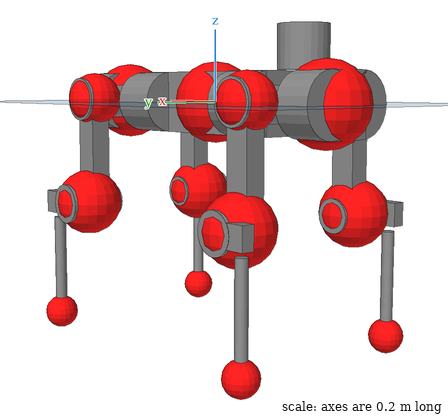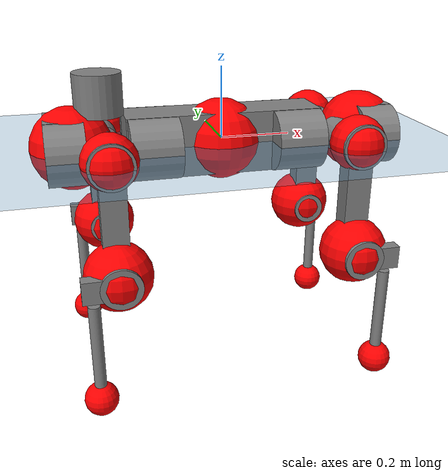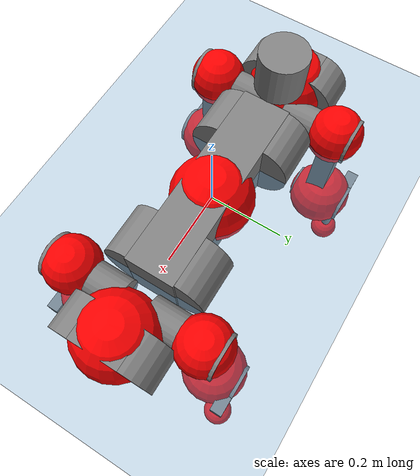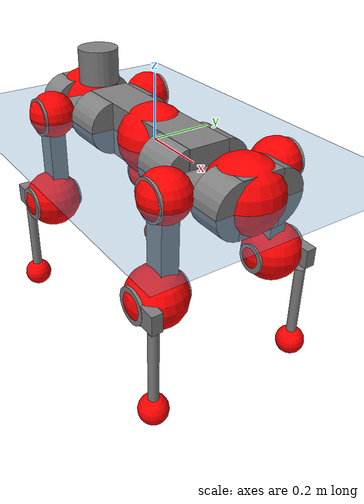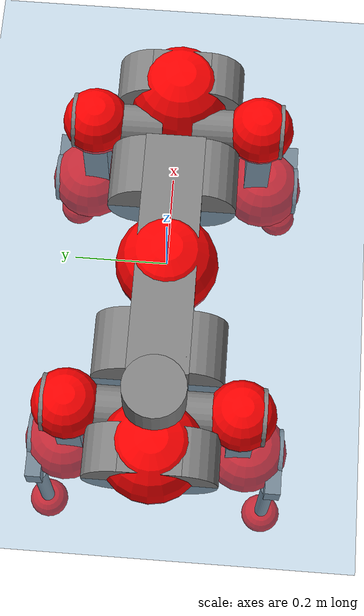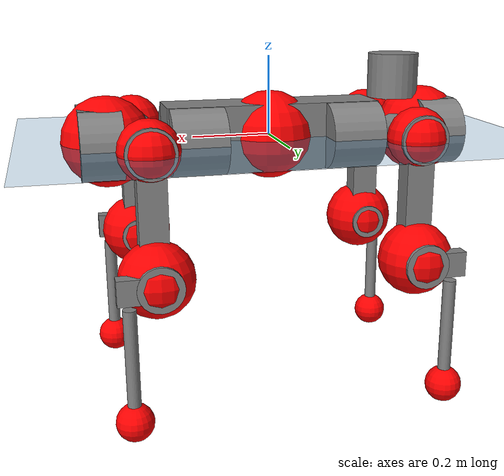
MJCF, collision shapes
<mujoco model="anymal_c">
  <compiler angle="radian" assetdir="assets" balanceinertia="true" inertiafromgeom="false"/>

  <option timestep="0.005" density="1.2" viscosity="2e-05"/>

  <size nkey="1"/>

  <visual>
    <quality shadowsize="8192"/>
    <map shadowclip="0.5"/>
  </visual>

  <default>
    <default class="/">
      <material specular="0" shininess="0.25"/>
      <geom contype="0" conaffinity="0" group="1" solref="-1000 -80"/>
      <site size="0.01 0.005 0.005" group="5"/>
      <general forcelimited="true" forcerange="-80 80" biastype="affine" gainprm="80" biasprm="0 -80 -2"/>
      <default class="anymal_c">
        <joint armature="0.01" damping="0.01" frictionloss="0.1"/>
        <default class="visual">
          <geom type="mesh" group="2"/>
          <default class="visual_zflip"/>
        </default>
        <default class="collision">
          <geom type="cylinder" group="3"/>
          <default class="foot">
            <geom size="0.03 0 0" type="sphere" condim="6" priority="1" friction="0.8 0.02 0.01" solimp="0.015 1 0.03"/>
          </default>
        </default>
      </default>
      <default class="reward_collision_sphere">
        <geom group="5" rgba="1 0 0 1"/>
      </default>
    </default>
  </default>

  <asset>
    <texture type="skybox" colorspace="auto" name="//unnamed_texture_0" builtin="gradient" rgb1="0.95 0.95 0.95" rgb2="0.95 0.95 0.95" width="100" height="600"/>
    <texture type="2d" colorspace="auto" name="texplane" builtin="checker" rgb1="0.345 0.575 0.748" rgb2="0.345 0.575 0.748" markrgb="1 1 1" width="512" height="512"/>
    <texture type="2d" colorspace="linear" name="base" file="base.png"/>
    <texture type="2d" colorspace="linear" name="top_shell" file="top_shell.png"/>
    <texture type="2d" colorspace="linear" name="bottom_shell" file="bottom_shell.png"/>
    <texture type="2d" colorspace="linear" name="remote" file="remote.png"/>
    <texture type="2d" colorspace="linear" name="hatch" file="hatch.png"/>
    <texture type="2d" colorspace="linear" name="handle" file="handle.png"/>
    <texture type="2d" colorspace="linear" name="face" file="face.png"/>
    <texture type="2d" colorspace="linear" name="battery" file="battery.png"/>
    <texture type="2d" colorspace="linear" name="lidar_cage" file="lidar_cage.png"/>
    <texture type="2d" colorspace="linear" name="depth_camera" file="depth_camera.png"/>
    <texture type="2d" colorspace="linear" name="wide_angle_camera" file="wide_angle_camera.png"/>
    <texture type="2d" colorspace="linear" name="lidar" file="lidar.png"/>
    <texture type="2d" colorspace="linear" name="drive" file="drive.png"/>
    <texture type="2d" colorspace="linear" name="hip_l" file="hip_l.png"/>
    <texture type="2d" colorspace="linear" name="shank_l" file="shank_l.png"/>
    <texture type="2d" colorspace="linear" name="foot" file="foot.png"/>
    <texture type="2d" colorspace="linear" name="thigh" file="thigh.png"/>
    <texture type="2d" colorspace="linear" name="shank_r" file="shank_r.png"/>
    <texture type="2d" colorspace="linear" name="hip_r" file="hip_r.png"/>
    <material name="MatPlane" class="/" texture="texplane" texuniform="true" texrepeat="2 2" specular="0.9" shininess="0.5"/>
    <material name="black_plastic" class="/" rgba="0.007 0.007 0.007 1"/>
    <material name="green" class="/" rgba="0.052 0.178 0.033 1"/>
    <material name="red" class="/" rgba="0.178 0.006 0.005 1"/>
    <material name="yellow" class="/" rgba="0.178 0.119 0.006 1"/>
    <material name="lwl" class="/" rgba="0.8 0.8 0.8 1"/>
    <material name="base" class="/" texture="base"/>
    <material name="top_shell" class="/" texture="top_shell"/>
    <material name="bottom_shell" class="/" texture="bottom_shell"/>
    <material name="hip_l" class="/" texture="hip_l"/>
    <material name="thigh" class="/" texture="thigh"/>
    <material name="shank_l" class="/" texture="shank_l"/>
    <material name="foot" class="/" texture="foot"/>
    <material name="hip_r" class="/" texture="hip_r"/>
    <material name="shank" class="/" texture="shank_r"/>
    <material name="hatch" class="/" texture="hatch"/>
    <material name="remote" class="/" texture="remote"/>
    <material name="handle" class="/" texture="handle"/>
    <material name="face" class="/" texture="face"/>
    <material name="depth_camera" class="/" texture="depth_camera"/>
    <material name="wide_angle_camera" class="/" texture="wide_angle_camera"/>
    <material name="battery" class="/" texture="battery"/>
    <material name="lidar_cage" class="/" texture="lidar_cage"/>
    <material name="lidar" class="/" texture="lidar"/>
    <material name="drive" class="/" texture="drive"/>
    <mesh name="base_0" class="/" file="base_0.obj"/>
    <mesh name="base_1" class="/" file="base_1.obj"/>
    <mesh name="base_2" class="/" file="base_2.obj"/>
    <mesh name="base_3" class="/" file="base_3.obj"/>
    <mesh name="base_4" class="/" file="base_4.obj"/>
    <mesh name="base_5" class="/" file="base_5.obj"/>
    <mesh name="top_shell" class="/" file="top_shell.obj"/>
    <mesh name="bottom_shell" class="/" file="bottom_shell.obj"/>
    <mesh name="remote" class="/" file="remote.obj"/>
    <mesh name="handle" class="/" file="handle.obj"/>
    <mesh name="face" class="/" file="face.obj"/>
    <mesh name="wide_angle_camera" class="/" file="wide_angle_camera.obj"/>
    <mesh name="depth_camera" class="/" file="depth_camera.obj"/>
    <mesh name="battery" class="/" file="battery.obj"/>
    <mesh name="lidar_cage" class="/" file="lidar_cage.obj"/>
    <mesh name="lidar" class="/" file="lidar.obj"/>
    <mesh name="drive" class="/" file="drive.obj"/>
    <mesh name="hip_l" class="/" file="hip_l.obj"/>
    <mesh name="thigh" class="/" file="thigh.obj"/>
    <mesh name="shank_l" class="/" file="shank_l.obj"/>
    <mesh name="foot" class="/" file="foot.obj"/>
    <mesh name="hip_r" class="/" file="hip_r.obj"/>
    <mesh name="hatch" class="/" file="hatch.obj"/>
    <mesh name="shank_r" class="/" file="shank_r.obj"/>
  </asset>

  <worldbody>
    <geom name="floor" class="/" size="100 100 0.125" type="plane" group="0" material="MatPlane"/>
    <light name="toplight_shadow" class="/" pos="0 0 5" dir="0.0990148 0.0990148 -0.990148" type="directional" ambient="0.04 0.04 0.04" diffuse="0.55 0.55 0.55" specular="0.12 0.12 0.12"/>
    <light name="toplight_fill" class="/" pos="0 0 5" dir="0.0990148 0.0990148 -0.990148" type="directional" castshadow="false" ambient="0.04 0.04 0.04" diffuse="0.3 0.3 0.3" specular="0.08 0.08 0.08"/>
    <body name="trunk" childclass="anymal_c" pos="-0.00176556 -0.000528869 -0.00036757" quat="1 0.000228988 0.000369212 0.000461114">
      <inertial pos="0.00149888 0.000395664 0.0532701" quat="0.490098 0.504945 0.502763 0.50206" mass="15.9601" diaginertia="0.446633 0.250908 0.314884"/>
      <joint name="//unnamed_joint_0" type="free" armature="0" damping="0" frictionloss="0"/>
      <geom name="//unnamed_geom_1" class="visual" material="green" mesh="base_0"/>
      <geom name="//unnamed_geom_2" class="visual" material="yellow" mesh="base_1"/>
      <geom name="//unnamed_geom_3" class="visual" material="red" mesh="base_2"/>
      <geom name="//unnamed_geom_4" class="visual" material="black_plastic" mesh="base_3"/>
      <geom name="//unnamed_geom_5" class="visual" material="lwl" mesh="base_4"/>
      <geom name="//unnamed_geom_6" class="visual" material="base" mesh="base_5"/>
      <geom name="trunk_1" class="collision" size="0.273852 0.0661023 0.0849887" type="box"/>
      <geom name="trunk_2" class="collision" size="0.0849887 0.0684631" pos="0.201535 0.058358 0" quat="0.707107 0 0.707107 0"/>
      <geom name="trunk_3" class="collision" size="0.0849887 0.0684631" pos="-0.201535 0.058358 0" quat="0.707107 0 0.707107 0"/>
      <geom name="trunk_4" class="collision" size="0.0849887 0.0684631" pos="0.201535 -0.058358 0" quat="0.707107 0 0.707107 0"/>
      <geom name="trunk_5" class="collision" size="0.0849887 0.0684631" pos="-0.201535 -0.058358 0" quat="0.707107 0 0.707107 0"/>
      <geom name="//unnamed_geom_12" class="visual" material="top_shell" mesh="top_shell"/>
      <geom name="//unnamed_geom_13" class="visual" material="bottom_shell" mesh="bottom_shell"/>
      <geom name="//unnamed_geom_14" class="visual" material="remote" mesh="remote"/>
      <geom name="//unnamed_geom_15" class="visual" material="handle" mesh="handle"/>
      <geom name="//unnamed_geom_16" class="visual" pos="0.384074 0 0" quat="1 0 0 0" material="face" mesh="face"/>
      <geom name="trunk_6" class="collision" size="0.0519375 0.0661023 0.0849887" pos="0.435037 0 0" type="box"/>
      <geom name="//unnamed_geom_18" class="collision" size="0.0849887 0.0519375" pos="0.435037 0.058358 0" quat="0.707107 0 0.707107 0"/>
      <geom name="//unnamed_geom_19" class="collision" size="0.0849887 0.0519375" pos="0.435037 -0.058358 0" quat="0.707107 0 0.707107 0"/>
      <geom name="//unnamed_geom_20" class="visual" pos="0.42777 0 -0.0324322" quat="0.965926 0 0.258819 0" material="depth_camera" mesh="depth_camera"/>
      <geom name="//unnamed_geom_21" class="visual" pos="0.475344 0 0.0160579" material="wide_angle_camera" mesh="wide_angle_camera"/>
      <geom name="//unnamed_geom_22" class="visual_zflip" pos="-0.384074 0 0" quat="0 0 0 1" material="face" mesh="face"/>
      <geom name="trunk_7" class="collision" size="0.0519375 0.0661023 0.0849887" pos="-0.435037 0 0" quat="0 0 0 1" type="box"/>
      <geom name="//unnamed_geom_24" class="collision" size="0.0849887 0.0519375" pos="-0.435037 -0.058358 0" quat="0 -0.707107 0 0.707107"/>
      <geom name="//unnamed_geom_25" class="collision" size="0.0849887 0.0519375" pos="-0.435037 0.058358 0" quat="0 -0.707107 0 0.707107"/>
      <geom name="//unnamed_geom_26" class="visual" pos="-0.42777 0 -0.0324322" quat="0 -0.258819 0 0.965926" material="depth_camera" mesh="depth_camera"/>
      <geom name="//unnamed_geom_27" class="visual_zflip" pos="-0.475344 0 0.0160579" quat="0 0 0 1" material="wide_angle_camera" mesh="wide_angle_camera"/>
      <geom name="//unnamed_geom_28" class="visual" material="battery" mesh="battery"/>
      <geom name="//unnamed_geom_29" class="visual" pos="0 0.0625305 0.030051" quat="0.683013 -0.183013 0.183013 0.683013" material="depth_camera" mesh="depth_camera"/>
      <geom name="//unnamed_geom_30" class="visual" pos="0 -0.0625305 0.030051" quat="0.683013 0.183013 0.183013 -0.683013" material="depth_camera" mesh="depth_camera"/>
      <geom name="//unnamed_geom_31" class="visual" pos="-0.337281 0 0.0788415" quat="1 0 0 0" material="lidar_cage" mesh="lidar_cage"/>
      <geom name="trunk_8" class="collision" size="0.0661023 0.0566591" pos="-0.337281 0 0.143202"/>
      <geom name="//unnamed_geom_33" class="visual" pos="-0.337281 -3.65022e-05 0.152534" quat="0.707107 0 0 -0.707107" material="lidar" mesh="lidar"/>
      <geom name="//unnamed_geom_34" class="visual" pos="0.277886 0.0867882 -4.12256e-09" quat="0.258819 0.965926 0 0" material="drive" mesh="drive"/>
      <geom name="//unnamed_geom_35" class="visual" pos="0.277886 -0.0867882 4.12256e-09" quat="0.258819 -0.965926 0 0" material="drive" mesh="drive"/>
      <geom name="//unnamed_geom_36" class="visual" pos="-0.277886 0.0867882 4.12256e-09" quat="0 0 0.965926 -0.258819" material="drive" mesh="drive"/>
      <geom name="//unnamed_geom_37" class="visual" pos="-0.277886 -0.0867882 -4.12256e-09" quat="0 0 -0.965926 -0.258819" material="drive" mesh="drive"/>
      <geom name="//unnamed_geom_38" class="visual" pos="0.107485 0 0.0783051" quat="1 0 0 0" material="hatch" mesh="hatch"/>
      <geom name="//unnamed_geom_39" class="reward_collision_sphere" size="0.113318"/>
      <geom name="//unnamed_geom_40" class="reward_collision_sphere" size="0.113318" pos="0.416969 0 0"/>
      <geom name="//unnamed_geom_41" class="reward_collision_sphere" size="0.113318" pos="-0.416969 0 0"/>
      <site name="imu" pos="0.234167 -0.00609761 0.0529411" size="0.00944319"/>
      <camera name="track" pos="0 -1.66737 0" quat="0.707107 0.707107 0 0" mode="trackcom"/>
      <camera name="ego_camera" pos="0.416969 0 -0.0429069" quat="-0.5 -0.5 0.5 0.5"/>
      <body name="LF_HIP" pos="0.278636 0.0877298 -0.00105355" quat="0.2577 0.966224 -5.23008e-05 -0.000877494">
        <inertial pos="0.052157 -0.0120841 -0.00772965" quat="-0.121819 0.710013 -0.142239 0.67883" mass="2.41733" diaginertia="0.00413688 0.00203905 0.00485497"/>
        <joint name="LF_HAA" pos="0 0 0" axis="0.99997 -0.00714572 0.00289478" range="-0.666813 0.494836" armature="0.0104434" damping="0.0101675" frictionloss="0.0974746"/>
        <geom name="//unnamed_geom_42" class="visual" pos="0 -0.000242511 3.98323e-05" quat="0.258819 -0.965926 0 0" material="hip_l" mesh="hip_l"/>
        <geom name="//unnamed_geom_43" class="visual" pos="0.0555032 -0.0661155 -0.0399395" quat="0.183013 -0.683013 0.683013 0.183013" material="drive" mesh="drive"/>
        <geom name="//unnamed_geom_44" class="collision" size="0.0472159 0.0661023" pos="0.0555032 -0.00997072 -0.00740681" quat="-0.353553 -0.612372 0.612372 -0.353553"/>
        <body name="LF_THIGH" pos="0.0559863 -0.0609155 -0.0443988" quat="0.183012 -0.683151 0.682855 0.183084">
          <inertial pos="0.028304 -0.00255172 -0.2661" quat="0.992746 -0.0020368 -0.0841668 0.08583" mass="2.63061" diaginertia="0.020594 0.012018 0.00591313"/>
          <joint name="LF_HFE" pos="0 0 0" axis="0.999997 0.00189233 -0.00147345" range="-3.13833 3.19217" armature="0.00924885" damping="0" frictionloss="0.0946154"/>
          <geom name="//unnamed_geom_45" class="visual" pos="0.00184856 2.9129e-06 0" quat="0.707107 0 0 -0.707107" material="thigh" mesh="thigh"/>
          <geom name="//unnamed_geom_46" class="collision" size="0.0613807 0.0377727" pos="0.0370639 0 0" quat="0.5 0.5 -0.5 -0.5"/>
          <geom name="//unnamed_geom_47" class="collision" size="0.035412 0.0283296 0.133445" pos="0.0277979 0 -0.151584" quat="0.707107 0 0 -0.707107" type="box"/>
          <geom name="//unnamed_geom_48" class="visual" pos="0.0929377 0 -0.305712" quat="1 0 0 0" material="drive" mesh="drive"/>
          <geom name="//unnamed_geom_49" class="collision" size="0.0472159 0.0661023" pos="0.0280759 0 -0.305712" quat="0.707107 0 0.707107 0"/>
          <geom name="//unnamed_geom_50" class="reward_collision_sphere" size="0.0755455" pos="0.0231649 0 0"/>
          <body name="LF_SHANK" pos="0.0953836 0.0021366 -0.304039" quat="1 6.79176e-07 3.92038e-06 3.59645e-05">
            <inertial pos="0.00598506 -0.0517247 -0.085013" quat="0.992953 -0.115743 -0.00105518 -0.0254242" mass="0.513178" diaginertia="0.00710195 0.00377966 0.00159561"/>
            <joint name="LF_KFE" pos="0 0 0" axis="0.999999 0.00128347 0.000607903" range="-3.11151 3.08893" armature="0.00933015" damping="0.010046" frictionloss="0.0958505"/>
            <geom name="//unnamed_geom_51" class="visual" pos="0.000602776 0.00321403 0" quat="0.707107 0 0 -0.707107" material="shank_l" mesh="shank_l"/>
            <geom name="LF_kfe_act" class="collision" size="0.0566591 0.0188864" pos="0.0185319 0 0" quat="0.5 0.5 -0.5 -0.5"/>
            <geom name="//unnamed_geom_53" class="collision" size="0.0542974 0.0318708 0.0179421" pos="0.0185319 -0.0479361 0" quat="0.5 0.5 -0.5 -0.5" type="box"/>
            <geom name="//unnamed_geom_54" class="visual" pos="0.0120919 -0.0722869 -0.362531" quat="0.382683 0 0 -0.92388" material="foot" mesh="foot"/>
            <geom name="LF_calf" class="collision" size="0.0165256 0.133387" pos="0.0120921 -0.0733227 -0.181266" quat="0.707107 0 0 -0.707107"/>
            <geom name="LF_foot" class="foot" size="0.0269271" pos="0.0120921 -0.0733227 -0.338396" quat="0.707107 0 0 -0.707107"/>
            <geom name="//unnamed_geom_57" class="reward_collision_sphere" size="0.0944319" pos="-0.0463298 0 0"/>
            <geom name="//unnamed_geom_58" class="reward_collision_sphere" size="0.0472159" pos="0.0120921 -0.0733227 -0.338396"/>
            <site name="LF_foot" class="foot" pos="0.0120921 -0.0733227 -0.338396" quat="0.707107 0 0 -0.707107" size="0.00944319"/>
          </body>
        </body>
      </body>
      <body name="RF_HIP" pos="0.278972 -0.0868751 0.00285202" quat="0.2587 -0.965958 2.70485e-05 2.92356e-05">
        <inertial pos="0.0536589 0.011796 -0.00877398" quat="0.133624 0.684318 0.116252 0.707347" mass="2.42207" diaginertia="0.00411011 0.0020399 0.00477593"/>
        <joint name="RF_HAA" pos="0 0 0" axis="0.999998 0.000107144 0.00181665" range="-0.455925 0.731662" armature="0.00948195" damping="0.00806845" frictionloss="0.0906871"/>
        <geom name="//unnamed_geom_59" class="visual" pos="0 0.000242509 3.98322e-05" quat="0.258819 0.965926 0 0" material="hip_r" mesh="hip_r"/>
        <geom name="//unnamed_geom_60" class="visual" pos="0.0555032 0.0661155 -0.0399395" quat="0.183013 0.683013 0.683013 -0.183013" material="drive" mesh="drive"/>
        <geom name="//unnamed_geom_61" class="collision" size="0.0472159 0.0661023" pos="0.0555032 0.00997072 -0.00740681" quat="-0.353553 0.612372 0.612372 0.353553"/>
        <body name="RF_THIGH" pos="0.0560845 0.0616867 -0.0475472" quat="0.182995 0.683169 0.682787 -0.183289">
          <inertial pos="0.0284183 -4.8323e-05 -0.265986" quat="0.992818 0.00535281 -0.0747356 0.0932683" mass="2.64107" diaginertia="0.0212143 0.0124496 0.00614737"/>
          <joint name="RF_HFE" pos="0 0 0" axis="1 6.89686e-05 0.000597572" stiffness="0.00592588" range="-3.19596 3.18335" armature="0.00847741" damping="0.0101163" frictionloss="0.089526"/>
          <geom name="//unnamed_geom_62" class="visual" pos="0.00184856 2.9129e-06 0" quat="0.707107 0 0 -0.707107" material="thigh" mesh="thigh"/>
          <geom name="//unnamed_geom_63" class="collision" size="0.0613807 0.0377727" pos="0.0370639 0 0" quat="0.5 0.5 0.5 0.5"/>
          <geom name="//unnamed_geom_64" class="collision" size="0.035412 0.0283296 0.133445" pos="0.0277979 0 -0.151584" quat="0.707107 0 0 0.707107" type="box"/>
          <geom name="//unnamed_geom_65" class="visual" pos="0.0929377 0 -0.305712" quat="1 0 0 0" material="drive" mesh="drive"/>
          <geom name="//unnamed_geom_66" class="collision" size="0.0472159 0.0661023" pos="0.0280759 0 -0.305712" quat="0.707107 0 0.707107 0"/>
          <geom name="//unnamed_geom_67" class="reward_collision_sphere" size="0.0755455" pos="0.0231649 0 0"/>
          <body name="RF_SHANK" pos="0.0934209 0.00034398 -0.306522" quat="1 4.13055e-05 5.54999e-06 5.02022e-07">
            <inertial pos="0.00422818 0.0516519 -0.0838185" quat="0.992688 0.118389 -0.00129839 0.0235252" mass="0.467014" diaginertia="0.00669308 0.00371963 0.00148835"/>
            <joint name="RF_KFE" pos="0 0 0" axis="0.999998 -0.00195486 0.000176648" range="-3.12809 3.12508" armature="0.0103907" damping="0.00947328" frictionloss="0.0948261"/>
            <geom name="//unnamed_geom_68" class="visual" pos="0.000602773 -0.00321403 0" quat="0.707107 0 0 0.707107" material="shank" mesh="shank_r"/>
            <geom name="RF_kfe_act" class="collision" size="0.0566591 0.0188864" pos="0.0185319 0 0" quat="0.5 0.5 0.5 0.5"/>
            <geom name="//unnamed_geom_70" class="collision" size="0.0542974 0.0318708 0.0179421" pos="0.0185319 0.0479361 0" quat="0.5 0.5 0.5 0.5" type="box"/>
            <geom name="//unnamed_geom_71" class="visual" pos="0.0120922 0.0722869 -0.362531" quat="0.382683 0 0 0.92388" material="foot" mesh="foot"/>
            <geom name="RF_calf" class="collision" size="0.0165256 0.133387" pos="0.0120921 0.0733227 -0.181266" quat="0.707107 0 0 0.707107"/>
            <geom name="RF_foot" class="foot" size="0.0280985" pos="0.0120921 0.0733227 -0.338396" quat="0.707107 0 0 0.707107"/>
            <geom name="//unnamed_geom_74" class="reward_collision_sphere" size="0.0944319" pos="-0.0463298 0 0"/>
            <geom name="//unnamed_geom_75" class="reward_collision_sphere" size="0.0472159" pos="0.0120921 0.0733227 -0.338396"/>
            <site name="RF_foot" class="foot" pos="0.0120921 0.0733227 -0.338396" quat="0.707107 0 0 0.707107" size="0.00944319"/>
          </body>
        </body>
      </body>
      <body name="LH_HIP" pos="-0.276953 0.0871235 -0.00169764" quat="3.61817e-06 -1.80234e-05 0.965916 -0.258857">
        <inertial pos="0.0525265 0.0123605 -0.0115939" quat="0.137133 0.679372 0.127353 0.709527" mass="2.42655" diaginertia="0.00414056 0.0019509 0.0047057"/>
        <joint name="LH_HAA" pos="0 0 0" axis="1 -0.000351614 -0.000915041" range="-0.440147 0.775131" armature="0.00950697" damping="0.00343162" frictionloss="0.106767"/>
        <geom name="//unnamed_geom_76" class="visual" pos="0 0.000242509 3.98322e-05" quat="-0.258819 -0.965926 0 0" material="hip_r" mesh="hip_r"/>
        <geom name="//unnamed_geom_77" class="visual" pos="0.0555032 0.0661155 -0.0399395" quat="0.183013 0.683013 0.683013 -0.183013" material="drive" mesh="drive"/>
        <geom name="//unnamed_geom_78" class="collision" size="0.0472159 0.0661023" pos="0.0555032 0.00997072 -0.00740681" quat="-0.353553 0.612372 0.612372 0.353553"/>
        <body name="LH_THIGH" pos="0.0554529 0.0613657 -0.0467991" quat="0.183054 0.682934 0.683078 -0.183023">
          <inertial pos="0.0260741 -0.000600034 -0.265971" quat="0.992565 0.00513179 -0.0759778 0.0949537" mass="2.60403" diaginertia="0.0198944 0.01206 0.00572484"/>
          <joint name="LH_HFE" pos="0 0 0" axis="0.99989 0.00208732 0.014715" range="-3.1941 3.16035" armature="0.0091736" damping="0.00379307" frictionloss="0.0938311"/>
          <geom name="//unnamed_geom_79" class="visual" pos="0.00184856 2.9129e-06 0" quat="0.707107 0 0 -0.707107" material="thigh" mesh="thigh"/>
          <geom name="//unnamed_geom_80" class="collision" size="0.0613807 0.0377727" pos="0.0370639 0 0" quat="0.5 0.5 -0.5 -0.5"/>
          <geom name="//unnamed_geom_81" class="collision" size="0.035412 0.0283296 0.133445" pos="0.0277979 0 -0.151584" quat="0.707107 0 0 -0.707107" type="box"/>
          <geom name="//unnamed_geom_82" class="visual" pos="0.0929377 0 -0.305712" quat="1 0 0 0" material="drive" mesh="drive"/>
          <geom name="//unnamed_geom_83" class="collision" size="0.0472159 0.0661023" pos="0.0280759 0 -0.305712" quat="0.707107 0 0.707107 0"/>
          <geom name="//unnamed_geom_84" class="reward_collision_sphere" size="0.0755455" pos="0.0231649 0 0"/>
          <body name="LH_SHANK" pos="0.0922594 -0.00108135 -0.307781" quat="1 -0.000182806 -0.000202764 -0.000147623">
            <inertial pos="0.00586568 0.0498415 -0.0850995" quat="0.994096 0.105761 -0.00522398 0.0236817" mass="0.481562" diaginertia="0.00692628 0.00368808 0.00159838"/>
            <joint name="LH_KFE" pos="0 0 0" axis="0.99998 -0.000524343 0.00623713" range="-3.16234 3.14158" armature="0.00939447" damping="0.00471547" frictionloss="0.0987965"/>
            <geom name="//unnamed_geom_85" class="visual" pos="0.000602773 -0.00321403 0" quat="-0.707107 0 0 -0.707107" material="shank" mesh="shank_r"/>
            <geom name="LH_kfe_act" class="collision" size="0.0566591 0.0188864" pos="0.0185319 0 0" quat="0.5 0.5 -0.5 -0.5"/>
            <geom name="//unnamed_geom_87" class="collision" size="0.0542974 0.0318708 0.0179421" pos="0.0185319 0.0479361 0" quat="0.5 0.5 -0.5 -0.5" type="box"/>
            <geom name="//unnamed_geom_88" class="visual" pos="0.0120922 0.0722869 -0.362531" quat="-0.382683 0 0 -0.92388" material="foot" mesh="foot"/>
            <geom name="LH_calf" class="collision" size="0.0165256 0.133387" pos="0.0120921 0.0733227 -0.181266" quat="0.707107 0 0 -0.707107"/>
            <geom name="LH_foot" class="foot" size="0.0319288" pos="0.0120921 0.0733227 -0.338396" quat="0.707107 0 0 -0.707107"/>
            <geom name="//unnamed_geom_91" class="reward_collision_sphere" size="0.0944319" pos="-0.0463298 0 0"/>
            <geom name="//unnamed_geom_92" class="reward_collision_sphere" size="0.0472159" pos="0.0120921 0.0733227 -0.338396"/>
            <site name="LH_foot" class="foot" pos="0.0120921 0.0733227 -0.338396" quat="0.707107 0 0 -0.707107" size="0.00944319"/>
          </body>
        </body>
      </body>
      <body name="RH_HIP" pos="-0.277879 -0.0857372 0.000969642" quat="0.00015441 0.000360101 -0.965973 -0.258642">
        <inertial pos="0.0527778 -0.0102965 -0.0109372" quat="-0.127664 0.709941 -0.135324 0.679245" mass="2.25982" diaginertia="0.00390516 0.00193718 0.00451696"/>
        <joint name="RH_HAA" pos="0 0 0" axis="0.999986 -0.00284563 -0.00443713" range="-0.73667 0.447876" armature="0.00911395" damping="0" frictionloss="0.0912916"/>
        <geom name="//unnamed_geom_93" class="visual" pos="0 -0.000242511 3.98323e-05" quat="-0.258819 0.965926 0 0" material="hip_l" mesh="hip_l"/>
        <geom name="//unnamed_geom_94" class="visual" pos="0.0555032 -0.0661155 -0.0399395" quat="-0.183013 0.683013 -0.683013 -0.183013" material="drive" mesh="drive"/>
        <geom name="//unnamed_geom_95" class="collision" size="0.0472159 0.0661023" pos="0.0555032 -0.00997072 -0.00740681" quat="0.353553 0.612372 -0.612372 0.353553"/>
        <body name="RH_THIGH" pos="0.0543492 -0.0598991 -0.0423266" quat="-0.183212 0.68282 -0.68309 -0.183246">
          <inertial pos="0.0277666 0.00167554 -0.263331" quat="0.993271 -0.00479968 -0.080475 0.0831447" mass="2.4381" diaginertia="0.0200631 0.0116778 0.00593351"/>
          <joint name="RH_HFE" pos="0 0 0" axis="0.999996 0.00288753 0.000129497" stiffness="0.00610957" range="-3.19394 3.19563" armature="0.009714" damping="0.00747133" frictionloss="0.083369"/>
          <geom name="//unnamed_geom_96" class="visual" pos="0.00184856 2.9129e-06 0" quat="0.707107 0 0 -0.707107" material="thigh" mesh="thigh"/>
          <geom name="//unnamed_geom_97" class="collision" size="0.0613807 0.0377727" pos="0.0370639 0 0" quat="0.5 0.5 0.5 0.5"/>
          <geom name="//unnamed_geom_98" class="collision" size="0.035412 0.0283296 0.133445" pos="0.0277979 0 -0.151584" quat="0.707107 0 0 0.707107" type="box"/>
          <geom name="//unnamed_geom_99" class="visual" pos="0.0929377 0 -0.305712" quat="1 0 0 0" material="drive" mesh="drive"/>
          <geom name="//unnamed_geom_100" class="collision" size="0.0472159 0.0661023" pos="0.0280759 0 -0.305712" quat="0.707107 0 0.707107 0"/>
          <geom name="//unnamed_geom_101" class="reward_collision_sphere" size="0.0755455" pos="0.0231649 0 0"/>
          <body name="RH_SHANK" pos="0.0950175 0.000377263 -0.304466" quat="1 0.000265158 -0.000367602 -0.000391556">
            <inertial pos="0.00446659 -0.0509927 -0.0863359" quat="0.992599 -0.118651 -0.0024496 -0.0257387" mass="0.474115" diaginertia="0.00689877 0.00364161 0.00156869"/>
            <joint name="RH_KFE" pos="0 0 0" axis="0.999991 0.000688142 -0.00407479" range="-3.1316 3.15278" armature="0.00940421" damping="0" frictionloss="0.0937711"/>
            <geom name="//unnamed_geom_102" class="visual" pos="0.000602776 0.00321403 0" quat="0.707107 0 0 -0.707107" material="shank_l" mesh="shank_l"/>
            <geom name="RH_kfe_act" class="collision" size="0.0566591 0.0188864" pos="0.0185319 0 0" quat="0.5 0.5 0.5 0.5"/>
            <geom name="//unnamed_geom_104" class="collision" size="0.0542974 0.0318708 0.0179421" pos="0.0185319 -0.0479361 0" quat="0.5 0.5 0.5 0.5" type="box"/>
            <geom name="//unnamed_geom_105" class="visual" pos="0.0120919 -0.0722869 -0.362531" quat="0.382683 0 0 -0.92388" material="foot" mesh="foot"/>
            <geom name="RH_calf" class="collision" size="0.0165256 0.133387" pos="0.0120921 -0.0733227 -0.181266" quat="0.707107 0 0 0.707107"/>
            <geom name="RH_foot" class="foot" size="0.0292167" pos="0.0120921 -0.0733227 -0.338396" quat="0.707107 0 0 0.707107"/>
            <geom name="//unnamed_geom_108" class="reward_collision_sphere" size="0.0944319" pos="-0.0463298 0 0"/>
            <geom name="//unnamed_geom_109" class="reward_collision_sphere" size="0.0472159" pos="0.0120921 -0.0733227 -0.338396"/>
            <site name="RH_foot" class="foot" pos="0.0120921 -0.0733227 -0.338396" quat="0.707107 0 0 0.707107" size="0.00944319"/>
          </body>
        </body>
      </body>
    </body>
  </worldbody>

  <contact>
    <pair class="/" geom1="floor" geom2="LF_foot" name="//unnamed_contact_0"/>
    <pair class="/" geom1="floor" geom2="RF_foot" name="//unnamed_contact_1"/>
    <pair class="/" geom1="floor" geom2="LH_foot" name="//unnamed_contact_2"/>
    <pair class="/" geom1="floor" geom2="RH_foot" name="//unnamed_contact_3"/>
  </contact>

  <actuator>
    <general name="LF_HAA" class="/" joint="LF_HAA" forcerange="-72.6939 72.6939" gainprm="74.4981" biasprm="0 -74.4981 -1.99701"/>
    <general name="LF_HFE" class="/" joint="LF_HFE" forcerange="-82.5758 82.5758" gainprm="74.4981" biasprm="0 -74.4981 -1.99701"/>
    <general name="LF_KFE" class="/" joint="LF_KFE" forcerange="-68.2626 68.2626" gainprm="74.4981" biasprm="0 -74.4981 -1.99701"/>
    <general name="RF_HAA" class="/" joint="RF_HAA" forcerange="-75.4208 75.4208" gainprm="74.4981" biasprm="0 -74.4981 -1.99701"/>
    <general name="RF_HFE" class="/" joint="RF_HFE" forcerange="-81.0916 81.0916" gainprm="74.4981" biasprm="0 -74.4981 -1.99701"/>
    <general name="RF_KFE" class="/" joint="RF_KFE" forcerange="-82.6672 82.6672" gainprm="74.4981" biasprm="0 -74.4981 -1.99701"/>
    <general name="LH_HAA" class="/" joint="LH_HAA" forcerange="-83.3809 83.3809" gainprm="74.4981" biasprm="0 -74.4981 -1.99701"/>
    <general name="LH_HFE" class="/" joint="LH_HFE" forcerange="-77.6641 77.6641" gainprm="74.4981" biasprm="0 -74.4981 -1.99701"/>
    <general name="LH_KFE" class="/" joint="LH_KFE" forcerange="-75.1589 75.1589" gainprm="74.4981" biasprm="0 -74.4981 -1.99701"/>
    <general name="RH_HAA" class="/" joint="RH_HAA" forcerange="-76.2248 76.2248" gainprm="74.4981" biasprm="0 -74.4981 -1.99701"/>
    <general name="RH_HFE" class="/" joint="RH_HFE" forcerange="-68.2977 68.2977" gainprm="74.4981" biasprm="0 -74.4981 -1.99701"/>
    <general name="RH_KFE" class="/" joint="RH_KFE" forcerange="-69.3787 69.3787" gainprm="74.4981" biasprm="0 -74.4981 -1.99701"/>
  </actuator>

  <sensor>
    <gyro site="imu" name="imu_angular_velocity"/>
    <velocimeter site="imu" name="imu_linear_velocity"/>
    <framelinvel objtype="site" objname="LF_foot" name="LF_foot_global_linear_velocity"/>
    <framelinvel objtype="site" objname="RF_foot" name="RF_foot_global_linear_velocity"/>
    <framelinvel objtype="site" objname="LH_foot" name="LH_foot_global_linear_velocity"/>
    <framelinvel objtype="site" objname="RH_foot" name="RH_foot_global_linear_velocity"/>
  </sensor>

  <keyframe>
    <key name="home" qpos="0 0 0.55 1 0 0 0 0 0.4 -0.8 0 -0.4 0.8 0 -0.4 0.8 0 0.4 -0.8"/>
  </keyframe>
</mujoco>
